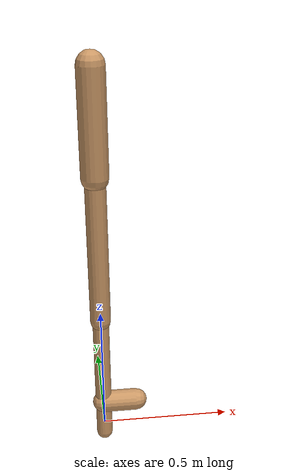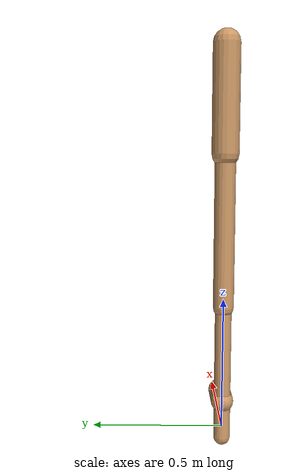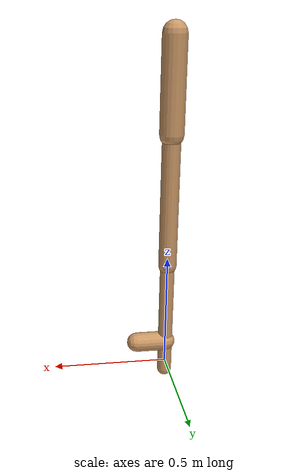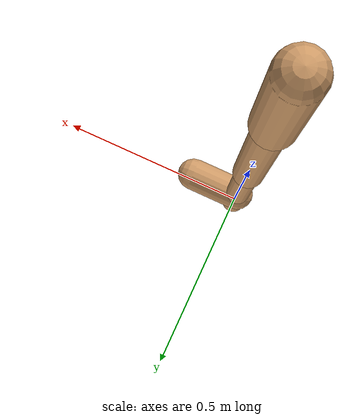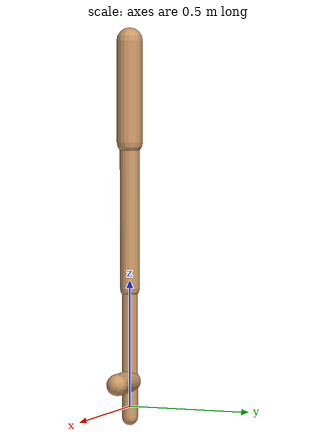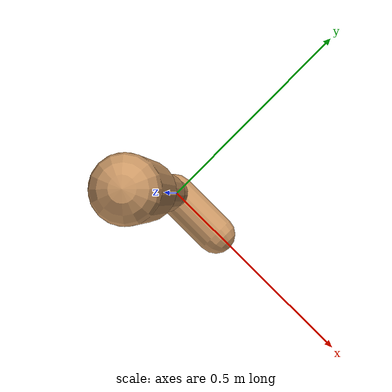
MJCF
<mujoco model="walker2d">
  <compiler angle="degree" coordinate="global" inertiafromgeom="true" />
  <default>
    <joint armature="0.01" damping=".1" limited="true" />
    <geom conaffinity="0" condim="3" contype="1" density="1000" friction="0.8 .1 .1" rgba="0.8 0.6 .4 1" />
  </default>
  <option integrator="RK4" timestep="0.002" />
  <worldbody>

    <body name="torso" pos="0 0 0.271796971993887">
      <joint armature="0" axis="1 0 0" damping="0" limited="false" name="ignorex" pos="0 0 0" stiffness="0" type="slide" />
      <joint armature="0" axis="0 0 1" damping="0" limited="false" name="ignorez" pos="0 0 0" ref="1.25" stiffness="0" type="slide" />
      <joint armature="0" axis="0 1 0" damping="0" limited="false" name="ignorey" pos="0 0 0" stiffness="0" type="hinge" />
      <geom fromto="0 0 1.45 0 0 1.05" name="torso_geom" size="0.05128893714679819" type="capsule" />
      <body name="thigh">
        <joint axis="0 -1 0" name="thigh_joint" pos="0 0 1.05" range="-150 0" type="hinge" />
        <geom fromto="0.0 0.0 1.05 0.0 0.0 0.4712540658976324" name="thigh_geom" size="0.039236445201280314" type="capsule" />
        <body name="leg" pos="0.0 0.0 -0.12874593410236757">
          <joint axis="0 -1 0" name="leg_joint" pos="0 0 0.6" range="-150 0" type="hinge" />
          <geom fromto="0.0 0.0 0.6 0.0 0.0 -0.043051037891519484" name="leg_geom" size="0.03138915616102425" type="capsule" />
          <body name="foot" pos="0.0 0.0 -0.1430510378915195">
            <joint axis="0 -1 0" name="foot_joint" pos="0 0 0.1" range="-45 45" type="hinge" />
            <geom fromto="0.0 0.0 0.1 0.13010528722705136 0.0 0.1" name="foot_geom" size="0.042953219594709005" type="capsule" />
          </body>
        </body>
      </body>

      <body name="thigh_left">
        <joint axis="0 -1 0" name="thigh_left_joint" pos="0 0 1.05" range="-150 0" type="hinge" />
        <geom fromto="0.0 0.0 1.05 0.0 0.0 0.4712540658976324" name="thigh_left_geom" rgba=".7 .3 .6 1" size="0.039236445201280314" type="capsule" />
        <body name="leg_left" pos="0.0 0.0 -0.12874593410236757">
          <joint axis="0 -1 0" name="leg_left_joint" pos="0 0 0.6" range="-150 0" type="hinge" />
          <geom fromto="0.0 0.0 0.6 0.0 0.0 -0.043051037891519484" name="leg_left_geom" rgba=".7 .3 .6 1" size="0.03138915616102425" type="capsule" />
          <body name="foot_left" pos="0.0 0.0 -0.1430510378915195">
            <joint axis="0 -1 0" name="foot_left_joint" pos="0 0 0.1" range="-45 45" type="hinge" />
            <geom fromto="0.0 0.0 0.1 0.13010528722705136 0.0 0.1" name="foot_left_geom" rgba=".7 .3 .6 1" size="0.042953219594709005" type="capsule" />
          </body>
        </body>
      </body>
    </body>
  </worldbody>
  <actuator>

    <motor ctrllimited="true" ctrlrange="-1.0 1.0" gear="100" joint="thigh_joint" />
    <motor ctrllimited="true" ctrlrange="-1.0 1.0" gear="100" joint="leg_joint" />
    <motor ctrllimited="true" ctrlrange="-1.0 1.0" gear="100" joint="foot_joint" />
    <motor ctrllimited="true" ctrlrange="-1.0 1.0" gear="100" joint="thigh_left_joint" />
    <motor ctrllimited="true" ctrlrange="-1.0 1.0" gear="100" joint="leg_left_joint" />
    <motor ctrllimited="true" ctrlrange="-1.0 1.0" gear="100" joint="foot_left_joint" />

  </actuator>
</mujoco>
